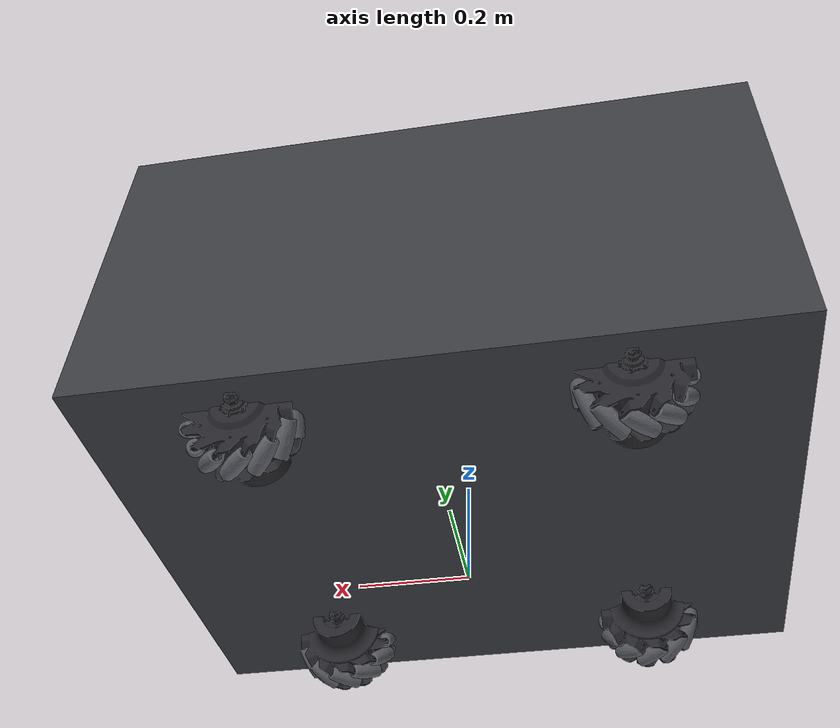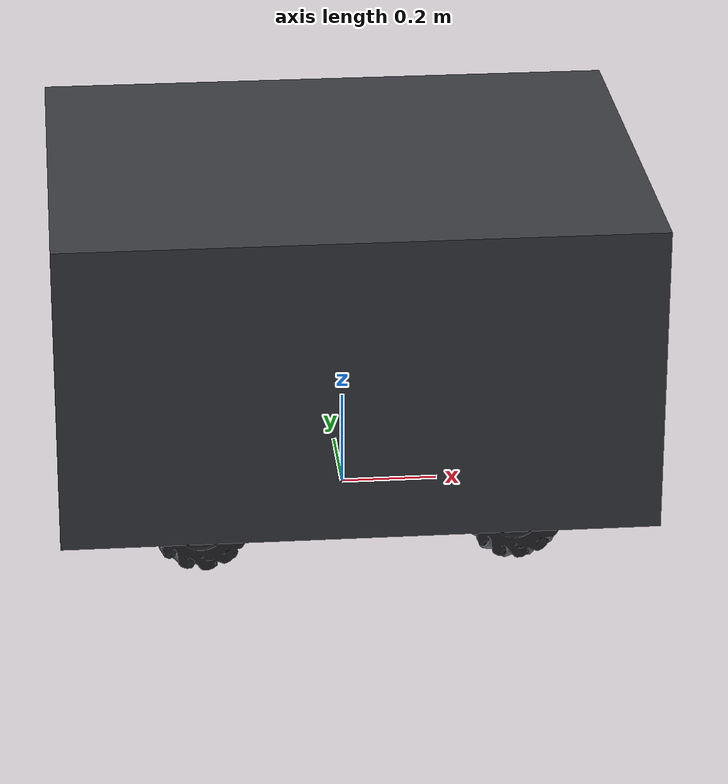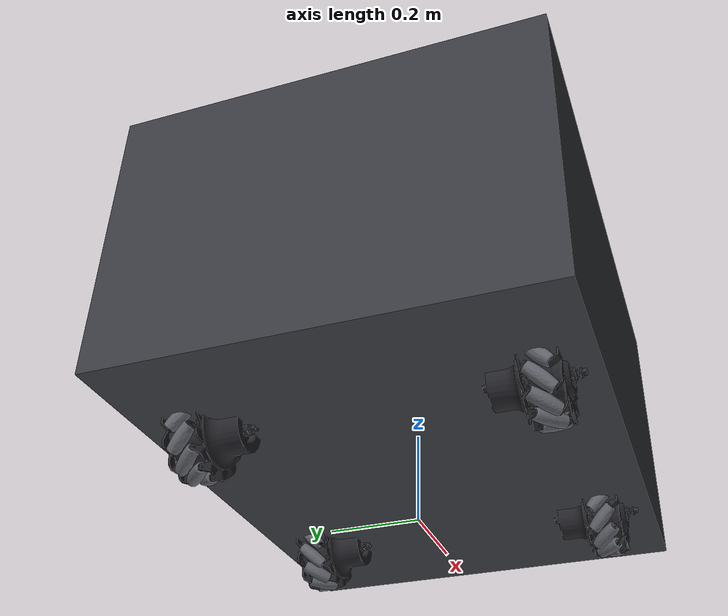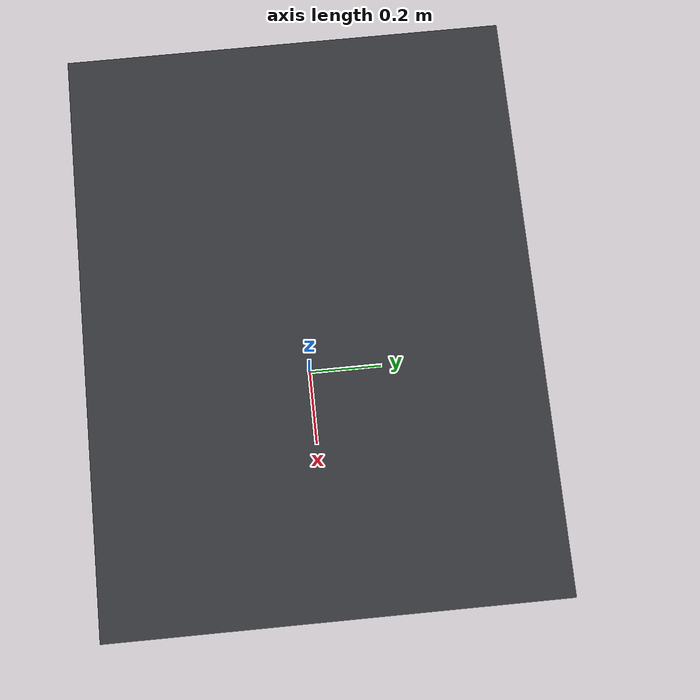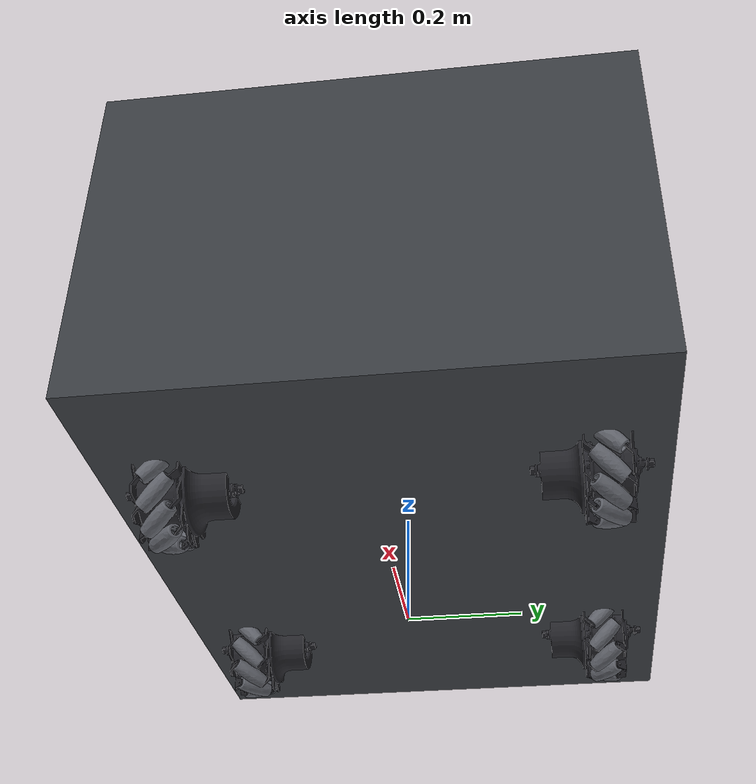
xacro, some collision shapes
<?xml version="1.0"?>
<robot xmlns:xacro="http://www.ros.org/wiki/xacro" name="agro_robot">

  <material name="chassis"><color rgba="0.22 0.23 0.25 1"/></material>
  <material name="hub"><color rgba="0.15 0.15 0.17 1"/></material>
  <material name="roller"><color rgba="0.38 0.39 0.42 1"/></material>

  <link name="base_footprint"/>
  <joint name="base_joint" type="fixed">
    <parent link="base_footprint"/><child link="base_link"/>
    <origin xyz="0 0 0.1014"/>
  </joint>

  <link name="base_link">
    <inertial>
      <origin xyz="0 0 0.22"/>
      <mass value="100.000"/>
      <inertia ixx="11.0" iyy="16.6" izz="18.5" ixy="0" ixz="0" iyz="0"/>
    </inertial>
    <visual>
      <origin xyz="0 0 -0.1035" rpy="0 0 -1.570796"/>
      <geometry><mesh filename="package://maze_nav/meshes/chassis.stl"
              scale="0.001 0.001 0.001"/></geometry>
      <material name="chassis"/>
    </visual>
    <!-- Коллизия примитивом: меш в 680 тыс. граней убил бы физику -->
    <collision>
      <origin xyz="0 0 0.319"/>
      <geometry><box size="1.2016 0.9228 0.6375"/></geometry>
    </collision>
  </link>

  <!-- колесо fl: CAD плоскость X=-355.4, ось Y=317.8, кольцо роликов R=86.0 мм -->
  <link name="fl_wheel">
    <inertial>
      <mass value="4.520"/>
      <inertia ixx="0.013210" iyy="0.023237" izz="0.013210" ixy="0" ixz="0" iyz="0"/>
    </inertial>
    <visual><geometry><mesh
      filename="package://maze_nav/meshes/wheel_hub_l.stl"
      scale="0.001 0.001 0.001"/></geometry>
      <material name="hub"/></visual>
    <!-- Коллизия рельсового ролика: набор цилиндров по измеренному
         профилю (см. RAIL_PROFILE). Канавка вогнутая, одним телом
         её не посчитать — движки берут только выпуклые формы. -->
    <collision><!-- R=50.0 мм -->
      <origin xyz="0 -0.0849 0" rpy="1.570796 0 0"/>
      <geometry><cylinder radius="0.05" length="0.0399"/></geometry>
    </collision>
    <collision><!-- R=52.0 мм -->
      <origin xyz="0 -0.0625 0" rpy="1.570796 0 0"/>
      <geometry><cylinder radius="0.052" length="0.0050"/></geometry>
    </collision>
    <collision><!-- R=55.0 мм -->
      <origin xyz="0 -0.0580 0" rpy="1.570796 0 0"/>
      <geometry><cylinder radius="0.055" length="0.0040"/></geometry>
    </collision>
    <collision><!-- R=58.0 мм -->
      <origin xyz="0 -0.0545 0" rpy="1.570796 0 0"/>
      <geometry><cylinder radius="0.058" length="0.0030"/></geometry>
    </collision>
    <collision><!-- R=62.0 мм -->
      <origin xyz="0 -0.0515 0" rpy="1.570796 0 0"/>
      <geometry><cylinder radius="0.062" length="0.0030"/></geometry>
    </collision>
    <collision><!-- R=68.0 мм -->
      <origin xyz="0 -0.0485 0" rpy="1.570796 0 0"/>
      <geometry><cylinder radius="0.068" length="0.0030"/></geometry>
    </collision>
    <collision><!-- R=75.0 мм -->
      <origin xyz="0 -0.0435 0" rpy="1.570796 0 0"/>
      <geometry><cylinder radius="0.075" length="0.0071"/></geometry>
    </collision>
  </link>
  <joint name="fl_wheel_joint" type="continuous">
    <parent link="base_link"/><child link="fl_wheel"/>
    <origin xyz="0.3178 0.3554 0"/>
    <axis xyz="0 1 0"/>
    <dynamics damping="0.05" friction="0.0"/>
  </joint>
  <link name="fl_roller_0">
    <inertial>
      <mass value="0.04"/>
      <inertia ixx="0.00001647" iyy="0.00001647" izz="0.00000477" ixy="0" ixz="0" iyz="0"/>
    </inertial>
    <visual><geometry><mesh filename="package://maze_nav/meshes/mec_roller.stl" scale="0.001 0.001 0.001"/></geometry><material name="roller"/></visual>
    <collision><geometry><mesh filename="package://maze_nav/meshes/mec_roller.stl" scale="0.001 0.001 0.001"/></geometry></collision>
  </link>
  <joint name="fl_roller_0_joint" type="continuous">
    <parent link="fl_wheel"/><child link="fl_roller_0"/>
    <origin xyz="-0.00004 0.00000 0.08600" rpy="-0.785403 1.570796 0.000000"/>
    <axis xyz="0 0 1"/>
    <dynamics damping="0.0001" friction="0.0"/>
  </joint>
  <link name="fl_roller_1">
    <inertial>
      <mass value="0.04"/>
      <inertia ixx="0.00001647" iyy="0.00001647" izz="0.00000477" ixy="0" ixz="0" iyz="0"/>
    </inertial>
    <visual><geometry><mesh filename="package://maze_nav/meshes/mec_roller.stl" scale="0.001 0.001 0.001"/></geometry><material name="roller"/></visual>
    <collision><geometry><mesh filename="package://maze_nav/meshes/mec_roller.stl" scale="0.001 0.001 0.001"/></geometry></collision>
  </link>
  <joint name="fl_roller_1_joint" type="continuous">
    <parent link="fl_wheel"/><child link="fl_roller_1"/>
    <origin xyz="-0.04303 -0.00000 0.07446" rpy="-0.785403 1.047200 0.000000"/>
    <axis xyz="0 0 1"/>
    <dynamics damping="0.0001" friction="0.0"/>
  </joint>
  <link name="fl_roller_2">
    <inertial>
      <mass value="0.04"/>
      <inertia ixx="0.00001647" iyy="0.00001647" izz="0.00000477" ixy="0" ixz="0" iyz="0"/>
    </inertial>
    <visual><geometry><mesh filename="package://maze_nav/meshes/mec_roller.stl" scale="0.001 0.001 0.001"/></geometry><material name="roller"/></visual>
    <collision><geometry><mesh filename="package://maze_nav/meshes/mec_roller.stl" scale="0.001 0.001 0.001"/></geometry></collision>
  </link>
  <joint name="fl_roller_2_joint" type="continuous">
    <parent link="fl_wheel"/><child link="fl_roller_2"/>
    <origin xyz="-0.07450 -0.00000 0.04297" rpy="-0.785403 0.523596 0.000000"/>
    <axis xyz="0 0 1"/>
    <dynamics damping="0.0001" friction="0.0"/>
  </joint>
  <link name="fl_roller_3">
    <inertial>
      <mass value="0.04"/>
      <inertia ixx="0.00001647" iyy="0.00001647" izz="0.00000477" ixy="0" ixz="0" iyz="0"/>
    </inertial>
    <visual><geometry><mesh filename="package://maze_nav/meshes/mec_roller.stl" scale="0.001 0.001 0.001"/></geometry><material name="roller"/></visual>
    <collision><geometry><mesh filename="package://maze_nav/meshes/mec_roller.stl" scale="0.001 0.001 0.001"/></geometry></collision>
  </link>
  <joint name="fl_roller_3_joint" type="continuous">
    <parent link="fl_wheel"/><child link="fl_roller_3"/>
    <origin xyz="-0.08600 -0.00000 -0.00004" rpy="-0.785403 0.000000 0.000000"/>
    <axis xyz="0 0 1"/>
    <dynamics damping="0.0001" friction="0.0"/>
  </joint>
  <link name="fl_roller_4">
    <inertial>
      <mass value="0.04"/>
      <inertia ixx="0.00001647" iyy="0.00001647" izz="0.00000477" ixy="0" ixz="0" iyz="0"/>
    </inertial>
    <visual><geometry><mesh filename="package://maze_nav/meshes/mec_roller.stl" scale="0.001 0.001 0.001"/></geometry><material name="roller"/></visual>
    <collision><geometry><mesh filename="package://maze_nav/meshes/mec_roller.stl" scale="0.001 0.001 0.001"/></geometry></collision>
  </link>
  <joint name="fl_roller_4_joint" type="continuous">
    <parent link="fl_wheel"/><child link="fl_roller_4"/>
    <origin xyz="-0.07446 -0.00000 -0.04303" rpy="-0.785403 -0.523596 0.000000"/>
    <axis xyz="0 0 1"/>
    <dynamics damping="0.0001" friction="0.0"/>
  </joint>
  <link name="fl_roller_5">
    <inertial>
      <mass value="0.04"/>
      <inertia ixx="0.00001647" iyy="0.00001647" izz="0.00000477" ixy="0" ixz="0" iyz="0"/>
    </inertial>
    <visual><geometry><mesh filename="package://maze_nav/meshes/mec_roller.stl" scale="0.001 0.001 0.001"/></geometry><material name="roller"/></visual>
    <collision><geometry><mesh filename="package://maze_nav/meshes/mec_roller.stl" scale="0.001 0.001 0.001"/></geometry></collision>
  </link>
  <joint name="fl_roller_5_joint" type="continuous">
    <parent link="fl_wheel"/><child link="fl_roller_5"/>
    <origin xyz="-0.04297 -0.00000 -0.07450" rpy="-0.785403 -1.047200 0.000000"/>
    <axis xyz="0 0 1"/>
    <dynamics damping="0.0001" friction="0.0"/>
  </joint>
  <link name="fl_roller_6">
    <inertial>
      <mass value="0.04"/>
      <inertia ixx="0.00001647" iyy="0.00001647" izz="0.00000477" ixy="0" ixz="0" iyz="0"/>
    </inertial>
    <visual><geometry><mesh filename="package://maze_nav/meshes/mec_roller.stl" scale="0.001 0.001 0.001"/></geometry><material name="roller"/></visual>
    <collision><geometry><mesh filename="package://maze_nav/meshes/mec_roller.stl" scale="0.001 0.001 0.001"/></geometry></collision>
  </link>
  <joint name="fl_roller_6_joint" type="continuous">
    <parent link="fl_wheel"/><child link="fl_roller_6"/>
    <origin xyz="0.00004 -0.00000 -0.08600" rpy="-0.785403 -1.570796 0.000000"/>
    <axis xyz="0 0 1"/>
    <dynamics damping="0.0001" friction="0.0"/>
  </joint>
  <link name="fl_roller_7">
    <inertial>
      <mass value="0.04"/>
      <inertia ixx="0.00001647" iyy="0.00001647" izz="0.00000477" ixy="0" ixz="0" iyz="0"/>
    </inertial>
    <visual><geometry><mesh filename="package://maze_nav/meshes/mec_roller.stl" scale="0.001 0.001 0.001"/></geometry><material name="roller"/></visual>
    <collision><geometry><mesh filename="package://maze_nav/meshes/mec_roller.stl" scale="0.001 0.001 0.001"/></geometry></collision>
  </link>
  <joint name="fl_roller_7_joint" type="continuous">
    <parent link="fl_wheel"/><child link="fl_roller_7"/>
    <origin xyz="0.04303 0.00000 -0.07446" rpy="-0.785403 -2.094393 0.000000"/>
    <axis xyz="0 0 1"/>
    <dynamics damping="0.0001" friction="0.0"/>
  </joint>
  <link name="fl_roller_8">
    <inertial>
      <mass value="0.04"/>
      <inertia ixx="0.00001647" iyy="0.00001647" izz="0.00000477" ixy="0" ixz="0" iyz="0"/>
    </inertial>
    <visual><geometry><mesh filename="package://maze_nav/meshes/mec_roller.stl" scale="0.001 0.001 0.001"/></geometry><material name="roller"/></visual>
    <collision><geometry><mesh filename="package://maze_nav/meshes/mec_roller.stl" scale="0.001 0.001 0.001"/></geometry></collision>
  </link>
  <joint name="fl_roller_8_joint" type="continuous">
    <parent link="fl_wheel"/><child link="fl_roller_8"/>
    <origin xyz="0.07450 0.00000 -0.04297" rpy="-0.785403 -2.617996 0.000000"/>
    <axis xyz="0 0 1"/>
    <dynamics damping="0.0001" friction="0.0"/>
  </joint>
  <link name="fl_roller_9">
    <inertial>
      <mass value="0.04"/>
      <inertia ixx="0.00001647" iyy="0.00001647" izz="0.00000477" ixy="0" ixz="0" iyz="0"/>
    </inertial>
    <visual><geometry><mesh filename="package://maze_nav/meshes/mec_roller.stl" scale="0.001 0.001 0.001"/></geometry><material name="roller"/></visual>
    <collision><geometry><mesh filename="package://maze_nav/meshes/mec_roller.stl" scale="0.001 0.001 0.001"/></geometry></collision>
  </link>
  <joint name="fl_roller_9_joint" type="continuous">
    <parent link="fl_wheel"/><child link="fl_roller_9"/>
    <origin xyz="0.08600 0.00000 0.00004" rpy="0.785403 -0.000000 0.000000"/>
    <axis xyz="0 0 1"/>
    <dynamics damping="0.0001" friction="0.0"/>
  </joint>
  <link name="fl_roller_10">
    <inertial>
      <mass value="0.04"/>
      <inertia ixx="0.00001647" iyy="0.00001647" izz="0.00000477" ixy="0" ixz="0" iyz="0"/>
    </inertial>
    <visual><geometry><mesh filename="package://maze_nav/meshes/mec_roller.stl" scale="0.001 0.001 0.001"/></geometry><material name="roller"/></visual>
    <collision><geometry><mesh filename="package://maze_nav/meshes/mec_roller.stl" scale="0.001 0.001 0.001"/></geometry></collision>
  </link>
  <joint name="fl_roller_10_joint" type="continuous">
    <parent link="fl_wheel"/><child link="fl_roller_10"/>
    <origin xyz="0.07446 0.00000 0.04303" rpy="-0.785403 2.617996 0.000000"/>
    <axis xyz="0 0 1"/>
    <dynamics damping="0.0001" friction="0.0"/>
  </joint>
  <link name="fl_roller_11">
    <inertial>
      <mass value="0.04"/>
      <inertia ixx="0.00001647" iyy="0.00001647" izz="0.00000477" ixy="0" ixz="0" iyz="0"/>
    </inertial>
    <visual><geometry><mesh filename="package://maze_nav/meshes/mec_roller.stl" scale="0.001 0.001 0.001"/></geometry><material name="roller"/></visual>
    <collision><geometry><mesh filename="package://maze_nav/meshes/mec_roller.stl" scale="0.001 0.001 0.001"/></geometry></collision>
  </link>
  <joint name="fl_roller_11_joint" type="continuous">
    <parent link="fl_wheel"/><child link="fl_roller_11"/>
    <origin xyz="0.04297 0.00000 0.07450" rpy="-0.785403 2.094393 0.000000"/>
    <axis xyz="0 0 1"/>
    <dynamics damping="0.0001" friction="0.0"/>
  </joint>

  <!-- колесо fr: CAD плоскость X=355.4, ось Y=317.8, кольцо роликов R=86.2 мм -->
  <link name="fr_wheel">
    <inertial>
      <mass value="4.520"/>
      <inertia ixx="0.013210" iyy="0.023237" izz="0.013210" ixy="0" ixz="0" iyz="0"/>
    </inertial>
    <visual><geometry><mesh
      filename="package://maze_nav/meshes/wheel_hub_r.stl"
      scale="0.001 0.001 0.001"/></geometry>
      <material name="hub"/></visual>
    <!-- Коллизия рельсового ролика: набор цилиндров по измеренному
         профилю (см. RAIL_PROFILE). Канавка вогнутая, одним телом
         её не посчитать — движки берут только выпуклые формы. -->
    <collision><!-- R=50.0 мм -->
      <origin xyz="0 0.0849 0" rpy="1.570796 0 0"/>
      <geometry><cylinder radius="0.05" length="0.0399"/></geometry>
    </collision>
    <collision><!-- R=52.0 мм -->
      <origin xyz="0 0.0625 0" rpy="1.570796 0 0"/>
      <geometry><cylinder radius="0.052" length="0.0050"/></geometry>
    </collision>
    <collision><!-- R=55.0 мм -->
      <origin xyz="0 0.0580 0" rpy="1.570796 0 0"/>
      <geometry><cylinder radius="0.055" length="0.0040"/></geometry>
    </collision>
    <collision><!-- R=58.0 мм -->
      <origin xyz="0 0.0545 0" rpy="1.570796 0 0"/>
      <geometry><cylinder radius="0.058" length="0.0030"/></geometry>
    </collision>
    <collision><!-- R=62.0 мм -->
      <origin xyz="0 0.0515 0" rpy="1.570796 0 0"/>
      <geometry><cylinder radius="0.062" length="0.0030"/></geometry>
    </collision>
    <collision><!-- R=68.0 мм -->
      <origin xyz="0 0.0485 0" rpy="1.570796 0 0"/>
      <geometry><cylinder radius="0.068" length="0.0030"/></geometry>
    </collision>
    <collision><!-- R=75.0 мм -->
      <origin xyz="0 0.0435 0" rpy="1.570796 0 0"/>
      <geometry><cylinder radius="0.075" length="0.0071"/></geometry>
    </collision>
  </link>
  <joint name="fr_wheel_joint" type="continuous">
    <parent link="base_link"/><child link="fr_wheel"/>
    <origin xyz="0.3178 -0.3554 0"/>
    <axis xyz="0 1 0"/>
    <dynamics damping="0.05" friction="0.0"/>
  </joint>
  <link name="fr_roller_0">
    <inertial>
      <mass value="0.04"/>
      <inertia ixx="0.00001647" iyy="0.00001647" izz="0.00000477" ixy="0" ixz="0" iyz="0"/>
    </inertial>
    <visual><geometry><mesh filename="package://maze_nav/meshes/mec_roller.stl" scale="0.001 0.001 0.001"/></geometry><material name="roller"/></visual>
    <collision><geometry><mesh filename="package://maze_nav/meshes/mec_roller.stl" scale="0.001 0.001 0.001"/></geometry></collision>
  </link>
  <joint name="fr_roller_0_joint" type="continuous">
    <parent link="fr_wheel"/><child link="fr_roller_0"/>
    <origin xyz="-0.00004 -0.00000 0.08600" rpy="-0.785403 -1.570796 0.000000"/>
    <axis xyz="0 0 1"/>
    <dynamics damping="0.0001" friction="0.0"/>
  </joint>
  <link name="fr_roller_1">
    <inertial>
      <mass value="0.04"/>
      <inertia ixx="0.00001647" iyy="0.00001647" izz="0.00000477" ixy="0" ixz="0" iyz="0"/>
    </inertial>
    <visual><geometry><mesh filename="package://maze_nav/meshes/mec_roller.stl" scale="0.001 0.001 0.001"/></geometry><material name="roller"/></visual>
    <collision><geometry><mesh filename="package://maze_nav/meshes/mec_roller.stl" scale="0.001 0.001 0.001"/></geometry></collision>
  </link>
  <joint name="fr_roller_1_joint" type="continuous">
    <parent link="fr_wheel"/><child link="fr_roller_1"/>
    <origin xyz="0.04297 0.00000 0.07450" rpy="-0.785403 -1.047200 0.000000"/>
    <axis xyz="0 0 1"/>
    <dynamics damping="0.0001" friction="0.0"/>
  </joint>
  <link name="fr_roller_2">
    <inertial>
      <mass value="0.04"/>
      <inertia ixx="0.00001647" iyy="0.00001647" izz="0.00000477" ixy="0" ixz="0" iyz="0"/>
    </inertial>
    <visual><geometry><mesh filename="package://maze_nav/meshes/mec_roller.stl" scale="0.001 0.001 0.001"/></geometry><material name="roller"/></visual>
    <collision><geometry><mesh filename="package://maze_nav/meshes/mec_roller.stl" scale="0.001 0.001 0.001"/></geometry></collision>
  </link>
  <joint name="fr_roller_2_joint" type="continuous">
    <parent link="fr_wheel"/><child link="fr_roller_2"/>
    <origin xyz="0.07446 0.00000 0.04303" rpy="-0.785403 -0.523596 0.000000"/>
    <axis xyz="0 0 1"/>
    <dynamics damping="0.0001" friction="0.0"/>
  </joint>
  <link name="fr_roller_3">
    <inertial>
      <mass value="0.04"/>
      <inertia ixx="0.00001647" iyy="0.00001647" izz="0.00000477" ixy="0" ixz="0" iyz="0"/>
    </inertial>
    <visual><geometry><mesh filename="package://maze_nav/meshes/mec_roller.stl" scale="0.001 0.001 0.001"/></geometry><material name="roller"/></visual>
    <collision><geometry><mesh filename="package://maze_nav/meshes/mec_roller.stl" scale="0.001 0.001 0.001"/></geometry></collision>
  </link>
  <joint name="fr_roller_3_joint" type="continuous">
    <parent link="fr_wheel"/><child link="fr_roller_3"/>
    <origin xyz="0.08600 0.00000 0.00004" rpy="-0.785403 0.000000 0.000000"/>
    <axis xyz="0 0 1"/>
    <dynamics damping="0.0001" friction="0.0"/>
  </joint>
  <link name="fr_roller_4">
    <inertial>
      <mass value="0.04"/>
      <inertia ixx="0.00001647" iyy="0.00001647" izz="0.00000477" ixy="0" ixz="0" iyz="0"/>
    </inertial>
    <visual><geometry><mesh filename="package://maze_nav/meshes/mec_roller.stl" scale="0.001 0.001 0.001"/></geometry><material name="roller"/></visual>
    <collision><geometry><mesh filename="package://maze_nav/meshes/mec_roller.stl" scale="0.001 0.001 0.001"/></geometry></collision>
  </link>
  <joint name="fr_roller_4_joint" type="continuous">
    <parent link="fr_wheel"/><child link="fr_roller_4"/>
    <origin xyz="0.07450 0.00000 -0.04297" rpy="-0.785403 0.523596 0.000000"/>
    <axis xyz="0 0 1"/>
    <dynamics damping="0.0001" friction="0.0"/>
  </joint>
  <link name="fr_roller_5">
    <inertial>
      <mass value="0.04"/>
      <inertia ixx="0.00001647" iyy="0.00001647" izz="0.00000477" ixy="0" ixz="0" iyz="0"/>
    </inertial>
    <visual><geometry><mesh filename="package://maze_nav/meshes/mec_roller.stl" scale="0.001 0.001 0.001"/></geometry><material name="roller"/></visual>
    <collision><geometry><mesh filename="package://maze_nav/meshes/mec_roller.stl" scale="0.001 0.001 0.001"/></geometry></collision>
  </link>
  <joint name="fr_roller_5_joint" type="continuous">
    <parent link="fr_wheel"/><child link="fr_roller_5"/>
    <origin xyz="0.04303 0.00000 -0.07446" rpy="-0.785403 1.047200 0.000000"/>
    <axis xyz="0 0 1"/>
    <dynamics damping="0.0001" friction="0.0"/>
  </joint>
  <link name="fr_roller_6">
    <inertial>
      <mass value="0.04"/>
      <inertia ixx="0.00001647" iyy="0.00001647" izz="0.00000477" ixy="0" ixz="0" iyz="0"/>
    </inertial>
    <visual><geometry><mesh filename="package://maze_nav/meshes/mec_roller.stl" scale="0.001 0.001 0.001"/></geometry><material name="roller"/></visual>
    <collision><geometry><mesh filename="package://maze_nav/meshes/mec_roller.stl" scale="0.001 0.001 0.001"/></geometry></collision>
  </link>
  <joint name="fr_roller_6_joint" type="continuous">
    <parent link="fr_wheel"/><child link="fr_roller_6"/>
    <origin xyz="0.00004 0.00000 -0.08600" rpy="-0.785403 1.570796 0.000000"/>
    <axis xyz="0 0 1"/>
    <dynamics damping="0.0001" friction="0.0"/>
  </joint>
  <link name="fr_roller_7">
    <inertial>
      <mass value="0.04"/>
      <inertia ixx="0.00001647" iyy="0.00001647" izz="0.00000477" ixy="0" ixz="0" iyz="0"/>
    </inertial>
    <visual><geometry><mesh filename="package://maze_nav/meshes/mec_roller.stl" scale="0.001 0.001 0.001"/></geometry><material name="roller"/></visual>
    <collision><geometry><mesh filename="package://maze_nav/meshes/mec_roller.stl" scale="0.001 0.001 0.001"/></geometry></collision>
  </link>
  <joint name="fr_roller_7_joint" type="continuous">
    <parent link="fr_wheel"/><child link="fr_roller_7"/>
    <origin xyz="-0.04297 -0.00000 -0.07450" rpy="-0.785403 2.094393 0.000000"/>
    <axis xyz="0 0 1"/>
    <dynamics damping="0.0001" friction="0.0"/>
  </joint>
  <link name="fr_roller_8">
    <inertial>
      <mass value="0.04"/>
      <inertia ixx="0.00001647" iyy="0.00001647" izz="0.00000477" ixy="0" ixz="0" iyz="0"/>
    </inertial>
    <visual><geometry><mesh filename="package://maze_nav/meshes/mec_roller.stl" scale="0.001 0.001 0.001"/></geometry><material name="roller"/></visual>
    <collision><geometry><mesh filename="package://maze_nav/meshes/mec_roller.stl" scale="0.001 0.001 0.001"/></geometry></collision>
  </link>
  <joint name="fr_roller_8_joint" type="continuous">
    <parent link="fr_wheel"/><child link="fr_roller_8"/>
    <origin xyz="-0.07446 -0.00000 -0.04303" rpy="-0.785403 2.617996 0.000000"/>
    <axis xyz="0 0 1"/>
    <dynamics damping="0.0001" friction="0.0"/>
  </joint>
  <link name="fr_roller_9">
    <inertial>
      <mass value="0.04"/>
      <inertia ixx="0.00001647" iyy="0.00001647" izz="0.00000477" ixy="0" ixz="0" iyz="0"/>
    </inertial>
    <visual><geometry><mesh filename="package://maze_nav/meshes/mec_roller.stl" scale="0.001 0.001 0.001"/></geometry><material name="roller"/></visual>
    <collision><geometry><mesh filename="package://maze_nav/meshes/mec_roller.stl" scale="0.001 0.001 0.001"/></geometry></collision>
  </link>
  <joint name="fr_roller_9_joint" type="continuous">
    <parent link="fr_wheel"/><child link="fr_roller_9"/>
    <origin xyz="-0.08600 -0.00000 -0.00004" rpy="-0.785403 3.141593 0.000000"/>
    <axis xyz="0 0 1"/>
    <dynamics damping="0.0001" friction="0.0"/>
  </joint>
  <link name="fr_roller_10">
    <inertial>
      <mass value="0.04"/>
      <inertia ixx="0.00001647" iyy="0.00001647" izz="0.00000477" ixy="0" ixz="0" iyz="0"/>
    </inertial>
    <visual><geometry><mesh filename="package://maze_nav/meshes/mec_roller.stl" scale="0.001 0.001 0.001"/></geometry><material name="roller"/></visual>
    <collision><geometry><mesh filename="package://maze_nav/meshes/mec_roller.stl" scale="0.001 0.001 0.001"/></geometry></collision>
  </link>
  <joint name="fr_roller_10_joint" type="continuous">
    <parent link="fr_wheel"/><child link="fr_roller_10"/>
    <origin xyz="-0.07450 -0.00000 0.04297" rpy="-0.785403 -2.617996 0.000000"/>
    <axis xyz="0 0 1"/>
    <dynamics damping="0.0001" friction="0.0"/>
  </joint>
  <link name="fr_roller_11">
    <inertial>
      <mass value="0.04"/>
      <inertia ixx="0.00001647" iyy="0.00001647" izz="0.00000477" ixy="0" ixz="0" iyz="0"/>
    </inertial>
    <visual><geometry><mesh filename="package://maze_nav/meshes/mec_roller.stl" scale="0.001 0.001 0.001"/></geometry><material name="roller"/></visual>
    <collision><geometry><mesh filename="package://maze_nav/meshes/mec_roller.stl" scale="0.001 0.001 0.001"/></geometry></collision>
  </link>
  <joint name="fr_roller_11_joint" type="continuous">
    <parent link="fr_wheel"/><child link="fr_roller_11"/>
    <origin xyz="-0.04303 -0.00000 0.07446" rpy="-0.785403 -2.094393 0.000000"/>
    <axis xyz="0 0 1"/>
    <dynamics damping="0.0001" friction="0.0"/>
  </joint>

  <!-- колесо rl: CAD плоскость X=-355.4, ось Y=-317.8, кольцо роликов R=88.8 мм -->
  <link name="rl_wheel">
    <inertial>
      <mass value="4.520"/>
      <inertia ixx="0.013210" iyy="0.023237" izz="0.013210" ixy="0" ixz="0" iyz="0"/>
    </inertial>
    <visual><geometry><mesh
      filename="package://maze_nav/meshes/wheel_hub_l.stl"
      scale="0.001 0.001 0.001"/></geometry>
      <material name="hub"/></visual>
    <!-- Коллизия рельсового ролика: набор цилиндров по измеренному
         профилю (см. RAIL_PROFILE). Канавка вогнутая, одним телом
         её не посчитать — движки берут только выпуклые формы. -->
    <collision><!-- R=50.0 мм -->
      <origin xyz="0 -0.0849 0" rpy="1.570796 0 0"/>
      <geometry><cylinder radius="0.05" length="0.0399"/></geometry>
    </collision>
    <collision><!-- R=52.0 мм -->
      <origin xyz="0 -0.0625 0" rpy="1.570796 0 0"/>
      <geometry><cylinder radius="0.052" length="0.0050"/></geometry>
    </collision>
    <collision><!-- R=55.0 мм -->
      <origin xyz="0 -0.0580 0" rpy="1.570796 0 0"/>
      <geometry><cylinder radius="0.055" length="0.0040"/></geometry>
    </collision>
    <collision><!-- R=58.0 мм -->
      <origin xyz="0 -0.0545 0" rpy="1.570796 0 0"/>
      <geometry><cylinder radius="0.058" length="0.0030"/></geometry>
    </collision>
    <collision><!-- R=62.0 мм -->
      <origin xyz="0 -0.0515 0" rpy="1.570796 0 0"/>
      <geometry><cylinder radius="0.062" length="0.0030"/></geometry>
    </collision>
    <collision><!-- R=68.0 мм -->
      <origin xyz="0 -0.0485 0" rpy="1.570796 0 0"/>
      <geometry><cylinder radius="0.068" length="0.0030"/></geometry>
    </collision>
    <collision><!-- R=75.0 мм -->
      <origin xyz="0 -0.0435 0" rpy="1.570796 0 0"/>
      <geometry><cylinder radius="0.075" length="0.0071"/></geometry>
    </collision>
  </link>
  <joint name="rl_wheel_joint" type="continuous">
    <parent link="base_link"/><child link="rl_wheel"/>
    <origin xyz="-0.3178 0.3554 0"/>
    <axis xyz="0 1 0"/>
    <dynamics damping="0.05" friction="0.0"/>
  </joint>
  <link name="rl_roller_0">
    <inertial>
      <mass value="0.04"/>
      <inertia ixx="0.00001647" iyy="0.00001647" izz="0.00000477" ixy="0" ixz="0" iyz="0"/>
    </inertial>
    <visual><geometry><mesh filename="package://maze_nav/meshes/mec_roller.stl" scale="0.001 0.001 0.001"/></geometry><material name="roller"/></visual>
    <collision><geometry><mesh filename="package://maze_nav/meshes/mec_roller.stl" scale="0.001 0.001 0.001"/></geometry></collision>
  </link>
  <joint name="rl_roller_0_joint" type="continuous">
    <parent link="rl_wheel"/><child link="rl_roller_0"/>
    <origin xyz="0.00004 0.00000 0.08600" rpy="-0.785403 -1.570796 0.000000"/>
    <axis xyz="0 0 1"/>
    <dynamics damping="0.0001" friction="0.0"/>
  </joint>
  <link name="rl_roller_1">
    <inertial>
      <mass value="0.04"/>
      <inertia ixx="0.00001647" iyy="0.00001647" izz="0.00000477" ixy="0" ixz="0" iyz="0"/>
    </inertial>
    <visual><geometry><mesh filename="package://maze_nav/meshes/mec_roller.stl" scale="0.001 0.001 0.001"/></geometry><material name="roller"/></visual>
    <collision><geometry><mesh filename="package://maze_nav/meshes/mec_roller.stl" scale="0.001 0.001 0.001"/></geometry></collision>
  </link>
  <joint name="rl_roller_1_joint" type="continuous">
    <parent link="rl_wheel"/><child link="rl_roller_1"/>
    <origin xyz="-0.04297 0.00000 0.07450" rpy="-0.785403 -2.094393 0.000000"/>
    <axis xyz="0 0 1"/>
    <dynamics damping="0.0001" friction="0.0"/>
  </joint>
  <link name="rl_roller_2">
    <inertial>
      <mass value="0.04"/>
      <inertia ixx="0.00001647" iyy="0.00001647" izz="0.00000477" ixy="0" ixz="0" iyz="0"/>
    </inertial>
    <visual><geometry><mesh filename="package://maze_nav/meshes/mec_roller.stl" scale="0.001 0.001 0.001"/></geometry><material name="roller"/></visual>
    <collision><geometry><mesh filename="package://maze_nav/meshes/mec_roller.stl" scale="0.001 0.001 0.001"/></geometry></collision>
  </link>
  <joint name="rl_roller_2_joint" type="continuous">
    <parent link="rl_wheel"/><child link="rl_roller_2"/>
    <origin xyz="-0.07446 -0.00000 0.04303" rpy="-0.785403 -2.617996 0.000000"/>
    <axis xyz="0 0 1"/>
    <dynamics damping="0.0001" friction="0.0"/>
  </joint>
  <link name="rl_roller_3">
    <inertial>
      <mass value="0.04"/>
      <inertia ixx="0.00001647" iyy="0.00001647" izz="0.00000477" ixy="0" ixz="0" iyz="0"/>
    </inertial>
    <visual><geometry><mesh filename="package://maze_nav/meshes/mec_roller.stl" scale="0.001 0.001 0.001"/></geometry><material name="roller"/></visual>
    <collision><geometry><mesh filename="package://maze_nav/meshes/mec_roller.stl" scale="0.001 0.001 0.001"/></geometry></collision>
  </link>
  <joint name="rl_roller_3_joint" type="continuous">
    <parent link="rl_wheel"/><child link="rl_roller_3"/>
    <origin xyz="-0.08600 -0.00000 0.00004" rpy="-0.785403 3.141593 0.000000"/>
    <axis xyz="0 0 1"/>
    <dynamics damping="0.0001" friction="0.0"/>
  </joint>
  <link name="rl_roller_4">
    <inertial>
      <mass value="0.04"/>
      <inertia ixx="0.00001647" iyy="0.00001647" izz="0.00000477" ixy="0" ixz="0" iyz="0"/>
    </inertial>
    <visual><geometry><mesh filename="package://maze_nav/meshes/mec_roller.stl" scale="0.001 0.001 0.001"/></geometry><material name="roller"/></visual>
    <collision><geometry><mesh filename="package://maze_nav/meshes/mec_roller.stl" scale="0.001 0.001 0.001"/></geometry></collision>
  </link>
  <joint name="rl_roller_4_joint" type="continuous">
    <parent link="rl_wheel"/><child link="rl_roller_4"/>
    <origin xyz="-0.07450 -0.00000 -0.04297" rpy="-0.785403 2.617996 0.000000"/>
    <axis xyz="0 0 1"/>
    <dynamics damping="0.0001" friction="0.0"/>
  </joint>
  <link name="rl_roller_5">
    <inertial>
      <mass value="0.04"/>
      <inertia ixx="0.00001647" iyy="0.00001647" izz="0.00000477" ixy="0" ixz="0" iyz="0"/>
    </inertial>
    <visual><geometry><mesh filename="package://maze_nav/meshes/mec_roller.stl" scale="0.001 0.001 0.001"/></geometry><material name="roller"/></visual>
    <collision><geometry><mesh filename="package://maze_nav/meshes/mec_roller.stl" scale="0.001 0.001 0.001"/></geometry></collision>
  </link>
  <joint name="rl_roller_5_joint" type="continuous">
    <parent link="rl_wheel"/><child link="rl_roller_5"/>
    <origin xyz="-0.04303 0.00000 -0.07446" rpy="-0.785403 2.094393 0.000000"/>
    <axis xyz="0 0 1"/>
    <dynamics damping="0.0001" friction="0.0"/>
  </joint>
  <link name="rl_roller_6">
    <inertial>
      <mass value="0.04"/>
      <inertia ixx="0.00001647" iyy="0.00001647" izz="0.00000477" ixy="0" ixz="0" iyz="0"/>
    </inertial>
    <visual><geometry><mesh filename="package://maze_nav/meshes/mec_roller.stl" scale="0.001 0.001 0.001"/></geometry><material name="roller"/></visual>
    <collision><geometry><mesh filename="package://maze_nav/meshes/mec_roller.stl" scale="0.001 0.001 0.001"/></geometry></collision>
  </link>
  <joint name="rl_roller_6_joint" type="continuous">
    <parent link="rl_wheel"/><child link="rl_roller_6"/>
    <origin xyz="-0.00004 0.00000 -0.08600" rpy="-0.785403 1.570796 0.000000"/>
    <axis xyz="0 0 1"/>
    <dynamics damping="0.0001" friction="0.0"/>
  </joint>
  <link name="rl_roller_7">
    <inertial>
      <mass value="0.04"/>
      <inertia ixx="0.00001647" iyy="0.00001647" izz="0.00000477" ixy="0" ixz="0" iyz="0"/>
    </inertial>
    <visual><geometry><mesh filename="package://maze_nav/meshes/mec_roller.stl" scale="0.001 0.001 0.001"/></geometry><material name="roller"/></visual>
    <collision><geometry><mesh filename="package://maze_nav/meshes/mec_roller.stl" scale="0.001 0.001 0.001"/></geometry></collision>
  </link>
  <joint name="rl_roller_7_joint" type="continuous">
    <parent link="rl_wheel"/><child link="rl_roller_7"/>
    <origin xyz="0.04297 0.00000 -0.07450" rpy="-0.785403 1.047200 0.000000"/>
    <axis xyz="0 0 1"/>
    <dynamics damping="0.0001" friction="0.0"/>
  </joint>
  <link name="rl_roller_8">
    <inertial>
      <mass value="0.04"/>
      <inertia ixx="0.00001647" iyy="0.00001647" izz="0.00000477" ixy="0" ixz="0" iyz="0"/>
    </inertial>
    <visual><geometry><mesh filename="package://maze_nav/meshes/mec_roller.stl" scale="0.001 0.001 0.001"/></geometry><material name="roller"/></visual>
    <collision><geometry><mesh filename="package://maze_nav/meshes/mec_roller.stl" scale="0.001 0.001 0.001"/></geometry></collision>
  </link>
  <joint name="rl_roller_8_joint" type="continuous">
    <parent link="rl_wheel"/><child link="rl_roller_8"/>
    <origin xyz="0.07446 -0.00000 -0.04303" rpy="-0.785403 0.523596 0.000000"/>
    <axis xyz="0 0 1"/>
    <dynamics damping="0.0001" friction="0.0"/>
  </joint>
  <link name="rl_roller_9">
    <inertial>
      <mass value="0.04"/>
      <inertia ixx="0.00001647" iyy="0.00001647" izz="0.00000477" ixy="0" ixz="0" iyz="0"/>
    </inertial>
    <visual><geometry><mesh filename="package://maze_nav/meshes/mec_roller.stl" scale="0.001 0.001 0.001"/></geometry><material name="roller"/></visual>
    <collision><geometry><mesh filename="package://maze_nav/meshes/mec_roller.stl" scale="0.001 0.001 0.001"/></geometry></collision>
  </link>
  <joint name="rl_roller_9_joint" type="continuous">
    <parent link="rl_wheel"/><child link="rl_roller_9"/>
    <origin xyz="0.08600 0.00000 -0.00004" rpy="-0.785403 0.000000 0.000000"/>
    <axis xyz="0 0 1"/>
    <dynamics damping="0.0001" friction="0.0"/>
  </joint>
  <link name="rl_roller_10">
    <inertial>
      <mass value="0.04"/>
      <inertia ixx="0.00001647" iyy="0.00001647" izz="0.00000477" ixy="0" ixz="0" iyz="0"/>
    </inertial>
    <visual><geometry><mesh filename="package://maze_nav/meshes/mec_roller.stl" scale="0.001 0.001 0.001"/></geometry><material name="roller"/></visual>
    <collision><geometry><mesh filename="package://maze_nav/meshes/mec_roller.stl" scale="0.001 0.001 0.001"/></geometry></collision>
  </link>
  <joint name="rl_roller_10_joint" type="continuous">
    <parent link="rl_wheel"/><child link="rl_roller_10"/>
    <origin xyz="0.07450 0.00000 0.04297" rpy="-0.785403 -0.523596 0.000000"/>
    <axis xyz="0 0 1"/>
    <dynamics damping="0.0001" friction="0.0"/>
  </joint>
  <link name="rl_roller_11">
    <inertial>
      <mass value="0.04"/>
      <inertia ixx="0.00001647" iyy="0.00001647" izz="0.00000477" ixy="0" ixz="0" iyz="0"/>
    </inertial>
    <visual><geometry><mesh filename="package://maze_nav/meshes/mec_roller.stl" scale="0.001 0.001 0.001"/></geometry><material name="roller"/></visual>
    <collision><geometry><mesh filename="package://maze_nav/meshes/mec_roller.stl" scale="0.001 0.001 0.001"/></geometry></collision>
  </link>
  <joint name="rl_roller_11_joint" type="continuous">
    <parent link="rl_wheel"/><child link="rl_roller_11"/>
    <origin xyz="0.04303 0.00000 0.07446" rpy="-0.785403 -1.047200 0.000000"/>
    <axis xyz="0 0 1"/>
    <dynamics damping="0.0001" friction="0.0"/>
  </joint>

  <!-- колесо rr: CAD плоскость X=355.4, ось Y=-317.8, кольцо роликов R=88.3 мм -->
  <link name="rr_wheel">
    <inertial>
      <mass value="4.520"/>
      <inertia ixx="0.013210" iyy="0.023237" izz="0.013210" ixy="0" ixz="0" iyz="0"/>
    </inertial>
    <visual><geometry><mesh
      filename="package://maze_nav/meshes/wheel_hub_r.stl"
      scale="0.001 0.001 0.001"/></geometry>
      <material name="hub"/></visual>
    <!-- Коллизия рельсового ролика: набор цилиндров по измеренному
         профилю (см. RAIL_PROFILE). Канавка вогнутая, одним телом
         её не посчитать — движки берут только выпуклые формы. -->
    <collision><!-- R=50.0 мм -->
      <origin xyz="0 0.0849 0" rpy="1.570796 0 0"/>
      <geometry><cylinder radius="0.05" length="0.0399"/></geometry>
    </collision>
    <collision><!-- R=52.0 мм -->
      <origin xyz="0 0.0625 0" rpy="1.570796 0 0"/>
      <geometry><cylinder radius="0.052" length="0.0050"/></geometry>
    </collision>
    <collision><!-- R=55.0 мм -->
      <origin xyz="0 0.0580 0" rpy="1.570796 0 0"/>
      <geometry><cylinder radius="0.055" length="0.0040"/></geometry>
    </collision>
    <collision><!-- R=58.0 мм -->
      <origin xyz="0 0.0545 0" rpy="1.570796 0 0"/>
      <geometry><cylinder radius="0.058" length="0.0030"/></geometry>
    </collision>
    <collision><!-- R=62.0 мм -->
      <origin xyz="0 0.0515 0" rpy="1.570796 0 0"/>
      <geometry><cylinder radius="0.062" length="0.0030"/></geometry>
    </collision>
    <collision><!-- R=68.0 мм -->
      <origin xyz="0 0.0485 0" rpy="1.570796 0 0"/>
      <geometry><cylinder radius="0.068" length="0.0030"/></geometry>
    </collision>
    <collision><!-- R=75.0 мм -->
      <origin xyz="0 0.0435 0" rpy="1.570796 0 0"/>
      <geometry><cylinder radius="0.075" length="0.0071"/></geometry>
    </collision>
  </link>
  <joint name="rr_wheel_joint" type="continuous">
    <parent link="base_link"/><child link="rr_wheel"/>
    <origin xyz="-0.3178 -0.3554 0"/>
    <axis xyz="0 1 0"/>
    <dynamics damping="0.05" friction="0.0"/>
  </joint>
  <link name="rr_roller_0">
    <inertial>
      <mass value="0.04"/>
      <inertia ixx="0.00001647" iyy="0.00001647" izz="0.00000477" ixy="0" ixz="0" iyz="0"/>
    </inertial>
    <visual><geometry><mesh filename="package://maze_nav/meshes/mec_roller.stl" scale="0.001 0.001 0.001"/></geometry><material name="roller"/></visual>
    <collision><geometry><mesh filename="package://maze_nav/meshes/mec_roller.stl" scale="0.001 0.001 0.001"/></geometry></collision>
  </link>
  <joint name="rr_roller_0_joint" type="continuous">
    <parent link="rr_wheel"/><child link="rr_roller_0"/>
    <origin xyz="0.00004 0.00000 0.08600" rpy="-0.785403 1.570796 0.000000"/>
    <axis xyz="0 0 1"/>
    <dynamics damping="0.0001" friction="0.0"/>
  </joint>
  <link name="rr_roller_1">
    <inertial>
      <mass value="0.04"/>
      <inertia ixx="0.00001647" iyy="0.00001647" izz="0.00000477" ixy="0" ixz="0" iyz="0"/>
    </inertial>
    <visual><geometry><mesh filename="package://maze_nav/meshes/mec_roller.stl" scale="0.001 0.001 0.001"/></geometry><material name="roller"/></visual>
    <collision><geometry><mesh filename="package://maze_nav/meshes/mec_roller.stl" scale="0.001 0.001 0.001"/></geometry></collision>
  </link>
  <joint name="rr_roller_1_joint" type="continuous">
    <parent link="rr_wheel"/><child link="rr_roller_1"/>
    <origin xyz="0.04303 0.00000 0.07446" rpy="-0.785403 2.094393 0.000000"/>
    <axis xyz="0 0 1"/>
    <dynamics damping="0.0001" friction="0.0"/>
  </joint>
  <link name="rr_roller_2">
    <inertial>
      <mass value="0.04"/>
      <inertia ixx="0.00001647" iyy="0.00001647" izz="0.00000477" ixy="0" ixz="0" iyz="0"/>
    </inertial>
    <visual><geometry><mesh filename="package://maze_nav/meshes/mec_roller.stl" scale="0.001 0.001 0.001"/></geometry><material name="roller"/></visual>
    <collision><geometry><mesh filename="package://maze_nav/meshes/mec_roller.stl" scale="0.001 0.001 0.001"/></geometry></collision>
  </link>
  <joint name="rr_roller_2_joint" type="continuous">
    <parent link="rr_wheel"/><child link="rr_roller_2"/>
    <origin xyz="0.07450 0.00000 0.04297" rpy="-0.785403 2.617996 0.000000"/>
    <axis xyz="0 0 1"/>
    <dynamics damping="0.0001" friction="0.0"/>
  </joint>
  <link name="rr_roller_3">
    <inertial>
      <mass value="0.04"/>
      <inertia ixx="0.00001647" iyy="0.00001647" izz="0.00000477" ixy="0" ixz="0" iyz="0"/>
    </inertial>
    <visual><geometry><mesh filename="package://maze_nav/meshes/mec_roller.stl" scale="0.001 0.001 0.001"/></geometry><material name="roller"/></visual>
    <collision><geometry><mesh filename="package://maze_nav/meshes/mec_roller.stl" scale="0.001 0.001 0.001"/></geometry></collision>
  </link>
  <joint name="rr_roller_3_joint" type="continuous">
    <parent link="rr_wheel"/><child link="rr_roller_3"/>
    <origin xyz="0.08600 0.00000 -0.00004" rpy="0.785403 -0.000000 0.000000"/>
    <axis xyz="0 0 1"/>
    <dynamics damping="0.0001" friction="0.0"/>
  </joint>
  <link name="rr_roller_4">
    <inertial>
      <mass value="0.04"/>
      <inertia ixx="0.00001647" iyy="0.00001647" izz="0.00000477" ixy="0" ixz="0" iyz="0"/>
    </inertial>
    <visual><geometry><mesh filename="package://maze_nav/meshes/mec_roller.stl" scale="0.001 0.001 0.001"/></geometry><material name="roller"/></visual>
    <collision><geometry><mesh filename="package://maze_nav/meshes/mec_roller.stl" scale="0.001 0.001 0.001"/></geometry></collision>
  </link>
  <joint name="rr_roller_4_joint" type="continuous">
    <parent link="rr_wheel"/><child link="rr_roller_4"/>
    <origin xyz="0.07446 0.00000 -0.04303" rpy="-0.785403 -2.617996 0.000000"/>
    <axis xyz="0 0 1"/>
    <dynamics damping="0.0001" friction="0.0"/>
  </joint>
  <link name="rr_roller_5">
    <inertial>
      <mass value="0.04"/>
      <inertia ixx="0.00001647" iyy="0.00001647" izz="0.00000477" ixy="0" ixz="0" iyz="0"/>
    </inertial>
    <visual><geometry><mesh filename="package://maze_nav/meshes/mec_roller.stl" scale="0.001 0.001 0.001"/></geometry><material name="roller"/></visual>
    <collision><geometry><mesh filename="package://maze_nav/meshes/mec_roller.stl" scale="0.001 0.001 0.001"/></geometry></collision>
  </link>
  <joint name="rr_roller_5_joint" type="continuous">
    <parent link="rr_wheel"/><child link="rr_roller_5"/>
    <origin xyz="0.04297 0.00000 -0.07450" rpy="-0.785403 -2.094393 0.000000"/>
    <axis xyz="0 0 1"/>
    <dynamics damping="0.0001" friction="0.0"/>
  </joint>
  <link name="rr_roller_6">
    <inertial>
      <mass value="0.04"/>
      <inertia ixx="0.00001647" iyy="0.00001647" izz="0.00000477" ixy="0" ixz="0" iyz="0"/>
    </inertial>
    <visual><geometry><mesh filename="package://maze_nav/meshes/mec_roller.stl" scale="0.001 0.001 0.001"/></geometry><material name="roller"/></visual>
    <collision><geometry><mesh filename="package://maze_nav/meshes/mec_roller.stl" scale="0.001 0.001 0.001"/></geometry></collision>
  </link>
  <joint name="rr_roller_6_joint" type="continuous">
    <parent link="rr_wheel"/><child link="rr_roller_6"/>
    <origin xyz="-0.00004 -0.00000 -0.08600" rpy="-0.785403 -1.570796 0.000000"/>
    <axis xyz="0 0 1"/>
    <dynamics damping="0.0001" friction="0.0"/>
  </joint>
  <link name="rr_roller_7">
    <inertial>
      <mass value="0.04"/>
      <inertia ixx="0.00001647" iyy="0.00001647" izz="0.00000477" ixy="0" ixz="0" iyz="0"/>
    </inertial>
    <visual><geometry><mesh filename="package://maze_nav/meshes/mec_roller.stl" scale="0.001 0.001 0.001"/></geometry><material name="roller"/></visual>
    <collision><geometry><mesh filename="package://maze_nav/meshes/mec_roller.stl" scale="0.001 0.001 0.001"/></geometry></collision>
  </link>
  <joint name="rr_roller_7_joint" type="continuous">
    <parent link="rr_wheel"/><child link="rr_roller_7"/>
    <origin xyz="-0.04303 -0.00000 -0.07446" rpy="-0.785403 -1.047200 0.000000"/>
    <axis xyz="0 0 1"/>
    <dynamics damping="0.0001" friction="0.0"/>
  </joint>
  <link name="rr_roller_8">
    <inertial>
      <mass value="0.04"/>
      <inertia ixx="0.00001647" iyy="0.00001647" izz="0.00000477" ixy="0" ixz="0" iyz="0"/>
    </inertial>
    <visual><geometry><mesh filename="package://maze_nav/meshes/mec_roller.stl" scale="0.001 0.001 0.001"/></geometry><material name="roller"/></visual>
    <collision><geometry><mesh filename="package://maze_nav/meshes/mec_roller.stl" scale="0.001 0.001 0.001"/></geometry></collision>
  </link>
  <joint name="rr_roller_8_joint" type="continuous">
    <parent link="rr_wheel"/><child link="rr_roller_8"/>
    <origin xyz="-0.07450 -0.00000 -0.04297" rpy="-0.785403 -0.523596 0.000000"/>
    <axis xyz="0 0 1"/>
    <dynamics damping="0.0001" friction="0.0"/>
  </joint>
  <link name="rr_roller_9">
    <inertial>
      <mass value="0.04"/>
      <inertia ixx="0.00001647" iyy="0.00001647" izz="0.00000477" ixy="0" ixz="0" iyz="0"/>
    </inertial>
    <visual><geometry><mesh filename="package://maze_nav/meshes/mec_roller.stl" scale="0.001 0.001 0.001"/></geometry><material name="roller"/></visual>
    <collision><geometry><mesh filename="package://maze_nav/meshes/mec_roller.stl" scale="0.001 0.001 0.001"/></geometry></collision>
  </link>
  <joint name="rr_roller_9_joint" type="continuous">
    <parent link="rr_wheel"/><child link="rr_roller_9"/>
    <origin xyz="-0.08600 -0.00000 0.00004" rpy="-0.785403 0.000000 0.000000"/>
    <axis xyz="0 0 1"/>
    <dynamics damping="0.0001" friction="0.0"/>
  </joint>
  <link name="rr_roller_10">
    <inertial>
      <mass value="0.04"/>
      <inertia ixx="0.00001647" iyy="0.00001647" izz="0.00000477" ixy="0" ixz="0" iyz="0"/>
    </inertial>
    <visual><geometry><mesh filename="package://maze_nav/meshes/mec_roller.stl" scale="0.001 0.001 0.001"/></geometry><material name="roller"/></visual>
    <collision><geometry><mesh filename="package://maze_nav/meshes/mec_roller.stl" scale="0.001 0.001 0.001"/></geometry></collision>
  </link>
  <joint name="rr_roller_10_joint" type="continuous">
    <parent link="rr_wheel"/><child link="rr_roller_10"/>
    <origin xyz="-0.07446 -0.00000 0.04303" rpy="-0.785403 0.523596 0.000000"/>
    <axis xyz="0 0 1"/>
    <dynamics damping="0.0001" friction="0.0"/>
  </joint>
  <link name="rr_roller_11">
    <inertial>
      <mass value="0.04"/>
      <inertia ixx="0.00001647" iyy="0.00001647" izz="0.00000477" ixy="0" ixz="0" iyz="0"/>
    </inertial>
    <visual><geometry><mesh filename="package://maze_nav/meshes/mec_roller.stl" scale="0.001 0.001 0.001"/></geometry><material name="roller"/></visual>
    <collision><geometry><mesh filename="package://maze_nav/meshes/mec_roller.stl" scale="0.001 0.001 0.001"/></geometry></collision>
  </link>
  <joint name="rr_roller_11_joint" type="continuous">
    <parent link="rr_wheel"/><child link="rr_roller_11"/>
    <origin xyz="-0.04297 -0.00000 0.07450" rpy="-0.785403 1.047200 0.000000"/>
    <axis xyz="0 0 1"/>
    <dynamics damping="0.0001" friction="0.0"/>
  </joint>

  <!-- Кронштейн: от профиля крыши ВПЕРЁД, горизонтально.
       Наклон живёт отдельно, в camera_link, чтобы менять его одной
       константой, не трогая вынос. -->
  <link name="camera_mount_link">
    <visual><origin xyz="-0.0150 0 0" rpy="0 1.570796 0"/>
      <geometry><cylinder radius="0.012" length="0.03"/></geometry>
      <material name="hub"/></visual>
  </link>
  <joint name="camera_mount_joint" type="fixed">
    <parent link="base_link"/><child link="camera_mount_link"/>
    <origin xyz="0.4405 0.0 0.5567"/>
  </joint>

  <!-- D435, наклон 49° вниз -->
  <link name="camera_link">
    <visual><geometry><box size="0.025 0.090 0.025"/></geometry>
      <material name="hub"/></visual>
  </link>
  <joint name="camera_joint" type="fixed">
    <parent link="camera_mount_link"/><child link="camera_link"/>
    <origin rpy="0 0.855211 0"/>
  </joint>

  <link name="imu_link"/>
  <joint name="imu_joint" type="fixed">
    <parent link="base_link"/><child link="imu_link"/><origin xyz="0 0 0"/>
  </joint>
</robot>
